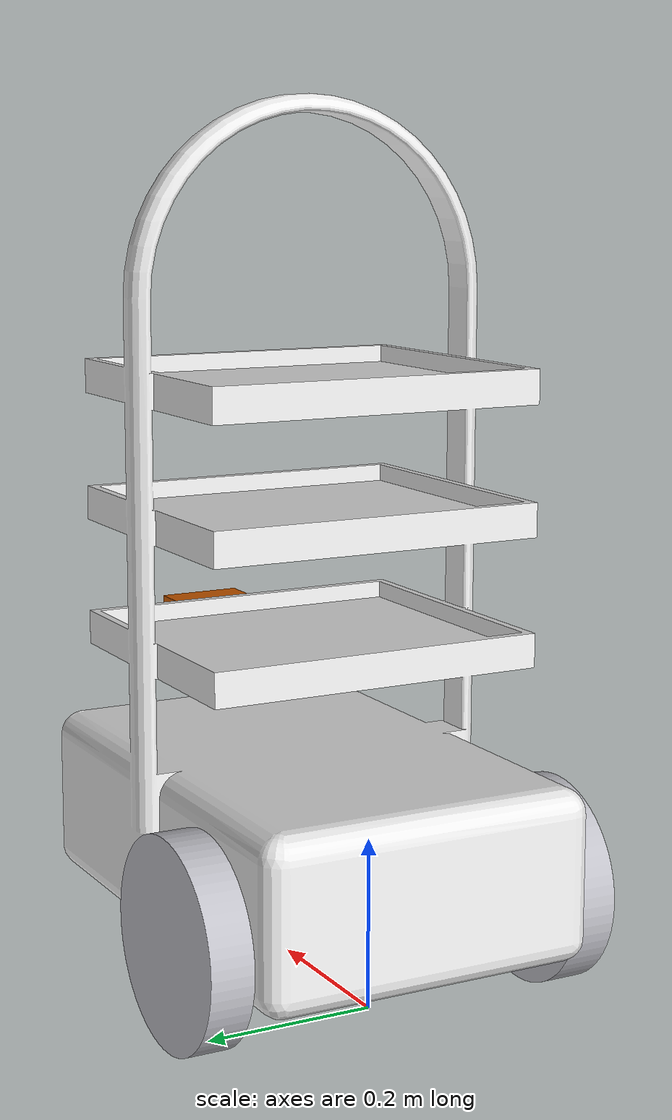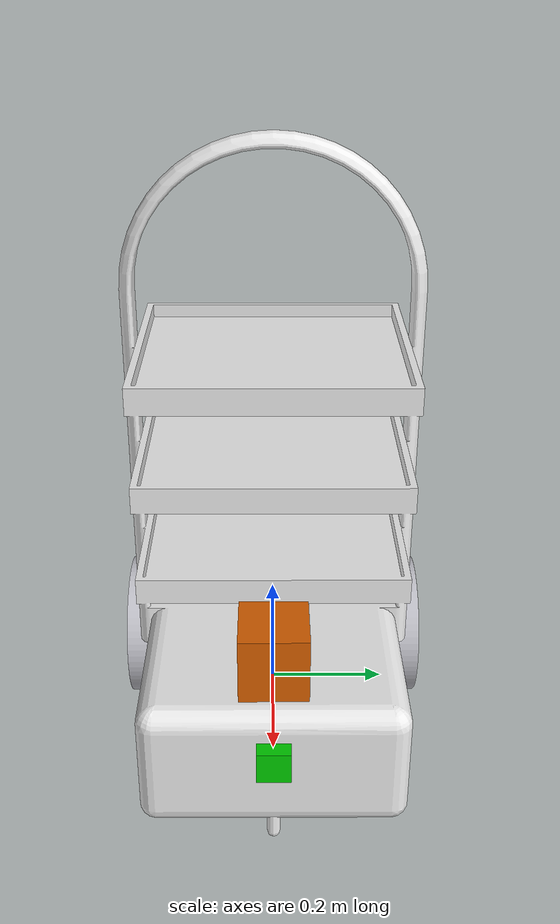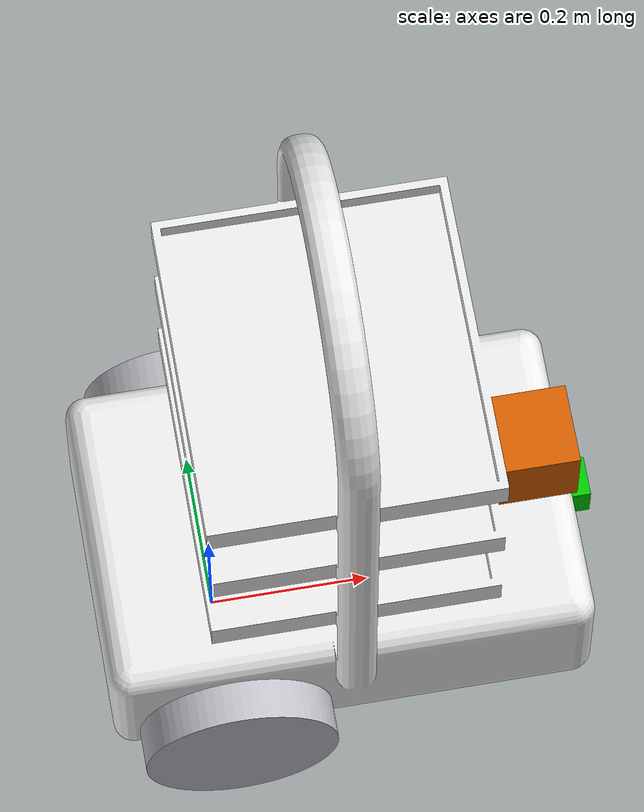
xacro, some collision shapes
<?xml version="1.0" ?>
<robot name="robot_description" xmlns:xacro="http://www.ros.org/wiki/xacro">

  <xacro:property name="cameraSize" value="0.05"/>
  <xacro:property name="cameraMass" value="0.1"/>

  <xacro:include filename="$(find medbot)/urdf/provanew.gazebo" />
  <xacro:include filename="$(find medbot)/urdf/materials.xacro" />

  <!--Dummy base link-->
  <link name="chassis">
  </link>

  <joint name="base_link_to_base" type="fixed">
    <parent link="chassis"/>
    <child link="base_link" />
    <origin rpy="0.0 0 0" xyz="0.15 0 0"/>
  </joint>

  <!--Base Link-->
  <link name='base_link'>
    <inertial>
      <mass value="9.8129" />
      <origin xyz="-0 0 0" rpy="0 0 0"/>
      <inertia
        ixx="1.0087" ixy="-6.05459e-06" ixz="-0.0112309" iyy="11.3554" iyz="-0.000118317" izz="0.684012"/>
    </inertial>

    <collision name='collision'>
      <origin xyz="0 0 0" rpy="0 0 0" />
      <geometry>
        <mesh filename="package://medbot/meshes/base_link.stl" scale="0.001 0.001 0.001"/>
      </geometry>
      <surface>
        <friction>
          <ode>
            <mu>0</mu>
            <mu2>0</mu2>
            <slip1>1.0</slip1>
            <slip2>1.0</slip2>
          </ode>
        </friction>
      </surface>
    </collision>

    <visual name='base_link_visual'>
      <origin xyz="-0 0 0" rpy="0 0 0" />
      <geometry>
        <mesh filename="package://medbot/meshes/base_link.stl" scale="0.001 0.001 0.001"/>
      </geometry>
    </visual>
  </link>

  <!--Left Standard Fixed Wheel-->
  <link name="left_wheel">
    <collision name="collision">
      <origin xyz="0.15 -0.201 -0.12" rpy="-0 0 0" />
      <geometry>
        <mesh filename="package://medbot/meshes/left_wheel_1.stl" scale="0.001 0.001 0.001"/>
      </geometry>
    </collision>
    <visual name="left_wheel_visual">
      <origin xyz="0.15 -0.201 -0.12" rpy="0 0 0" />
      <geometry>
      <mesh filename="package://medbot/meshes/left_wheel_1.stl" scale="0.001 0.001 0.001"/>
      </geometry>
    </visual>
    <inertial>
      <origin xyz="2.7755575615628914e-17 0.024999999999999994 0.0" rpy="0 0 0"/>
      <mass value="2.1036104408437253" />
      <inertia
        ixx="0.008011" iyy="0.015146" izz="0.008011" ixy="0.0" iyz="-0.0" ixz="0.0"/>
    </inertial>
  </link>

  <joint type="continuous" name="left_wheel_hinge">
    <origin xyz="-0.15 0.201 0.12" rpy="0 0 0"/>
    <parent link="base_link"/>
    <child link="left_wheel"/>
    <axis xyz="0.0 1.0 0.0"/>
    <limit effort="10000" velocity="1000"/>
    <joint_properties damping="1.0" friction="1.0"/>
  </joint>

  <!--Right Standard Fixed Wheel-->
  <link name="right_wheel">
    <collision name="collision">
      <origin xyz="0.15 0.201 -0.12" rpy="0 -0 0" />
      <geometry>
        <mesh filename="package://medbot/meshes/right_wheel_1.stl" scale="0.001 0.001 0.001"/>
      </geometry>
    </collision>
    <visual name="right_wheel_visual">
      <origin xyz="0.15 0.201 -0.12" rpy="0 -0 0" />
      <geometry>
        <mesh filename="package://medbot/meshes/right_wheel_1.stl" scale="0.001 0.001 0.001"/>
      </geometry>
    </visual>
    <inertial>
      <origin xyz="0.0 -0.02500000000000005 0.0" rpy="0 0 0"/>
      <mass value="2.1036104408437253" />
      <inertia
        ixx="0.008011" iyy="0.015146" izz="0.008011" ixy="0.0" iyz="-0.0" ixz="0.0"/>
    </inertial>
  </link>

  <joint type="continuous" name="right_wheel_hinge">
    <origin xyz="-0.15 -0.201 0.12" rpy="0 0 0"/>
    <parent link="base_link"/>
    <child link="right_wheel"/>
    <axis xyz="0.0 1.0 0.0"/>
    <limit effort="10000" velocity="1000"/>
    <joint_properties damping="1.0" friction="1.0"/>
  </joint>

  <link name="camera">
    <collision>
      <origin xyz="0 0 0" rpy="0 0 0"/>
      <geometry>
        <box size="${cameraSize} ${cameraSize} ${cameraSize}"/>
      </geometry>
    </collision>

    <visual>
      <origin xyz="0 0 0" rpy="0 0 0"/>
      <geometry>
        <box size="${cameraSize} ${cameraSize} ${cameraSize}"/>
      </geometry>
      <material name="green"/>
    </visual>

    <inertial>
      <mass value="${cameraMass}" />
      <origin xyz="0 0 0" rpy="0 0 0"/>
      <box_inertia m="${cameraMass}" x="${cameraSize}" y="${cameraSize}" z="${cameraSize}" />
      <inertia ixx="1e-6" ixy="0" ixz="0" iyy="1e-6" iyz="0" izz="1e-6" />
    </inertial>
  </link>

  <!-- Hokuyo Laser -->
  <link name="hokuyo">
    <collision>
      <origin xyz="0 0 0" rpy="0 0 0"/>
      <geometry>
    <box size="0.1 0.1 0.1"/>
      </geometry>
    </collision>

    <visual>
      <origin xyz="0 0 0" rpy="0 0 0"/>
      <geometry>
        <mesh filename="package://medbot/meshes/hokuyo.dae"/>
      </geometry>
    </visual>

    <inertial>
      <mass value="1e-5" />
      <origin xyz="0 0 0" rpy="0 0 0"/>
      <inertia ixx="1e-6" ixy="0" ixz="0" iyy="1e-6" iyz="0" izz="1e-6" />
    </inertial>
  </link>

  <joint name="camera_joint" type="fixed">
    <axis xyz="0 1 0" />
    <origin xyz="0.3 0 0.2" rpy="0 0 0"/>
    <parent link="base_link"/>
    <child link="camera"/>
  </joint>

  <joint name="hokuyo_joint" type="fixed">
    <axis xyz="0 1 0" />
    <origin xyz=".25 0 .35" rpy="0 0 0"/>
    <parent link="base_link"/>
    <child link="hokuyo"/>
  </joint>
</robot>

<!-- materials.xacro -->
<robot>

<material name="silver">
  <color rgba="0.700 0.700 0.700 1.000"/>
</material>

<material name="black">
  <color rgba="0.0 0.0 0.0 1.0"/>
</material>

<material name="blue">
  <color rgba="0.0 0.0 0.8 1.0"/>
</material>

<material name="green">
  <color rgba="0.0 0.8 0.0 1.0"/>
</material>

<material name="grey">
  <color rgba="0.2 0.2 0.2 1.0"/>
</material>

<material name="orange">
  <color rgba="${255/255} ${108/255} ${10/255} 1.0"/>
</material>

<material name="brown">
  <color rgba="${222/255} ${207/255} ${195/255} 1.0"/>
</material>

<material name="red">
  <color rgba="0.8 0.0 0.0 1.0"/>
</material>

<material name="white">
  <color rgba="1.0 1.0 1.0 1.0"/>
</material>

</robot>
